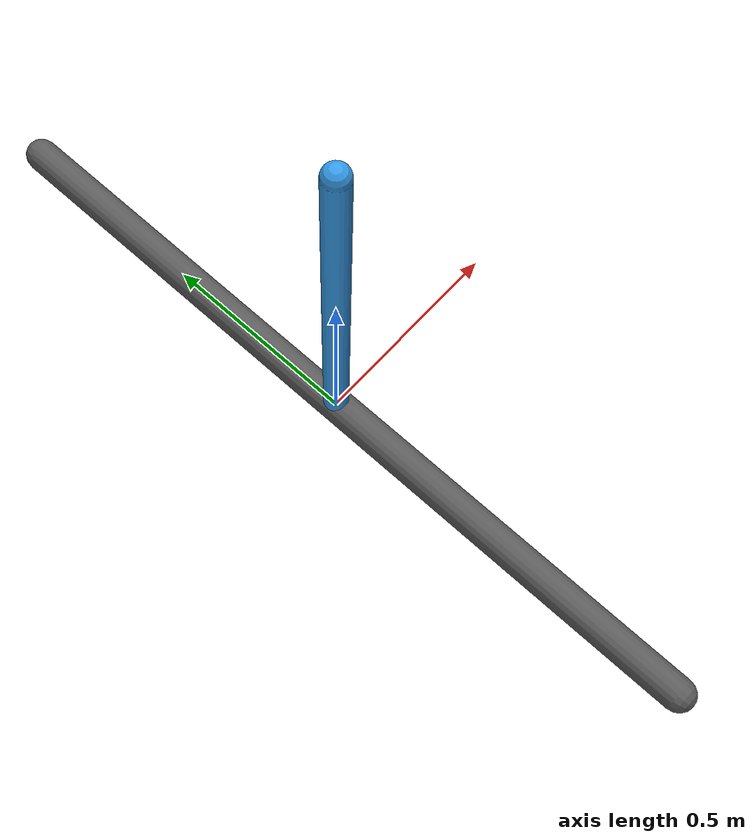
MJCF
<mujoco model="one_dof_torque_control">
  <option timestep="0.002" gravity="0 0 -9.81"/>
  <compiler angle="radian"/>

  <worldbody>
    <light pos="0 0 3"/>

    <!-- Fixed visual support. Collision is disabled. -->
    <geom name="support"
          type="capsule"
          fromto="0 -1 0  0 1 0"
          size="0.04"
          contype="0"
          conaffinity="0"
          rgba="0.35 0.35 0.35 1"/>

    <body name="arm" pos="0 0 0">
      <joint name="hinge_joint"
             type="hinge"
             axis="0 1 0"
             limited="true"
             range="-1.57 1.57"
             damping="0.3"/>

      <geom name="rod"
            type="capsule"
            fromto="0 0 0  0 0 1"
            size="0.03"
            density="5000"
            rgba="0.2 0.6 0.9 1"/>
    </body>
  </worldbody>

  <actuator>
    <motor name="torque_motor"
           joint="hinge_joint"
           gear="1"/>
  </actuator>
</mujoco>
